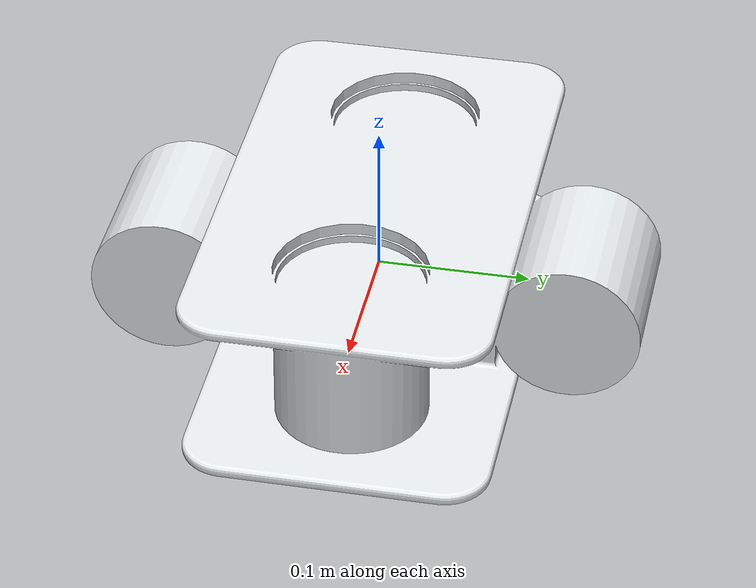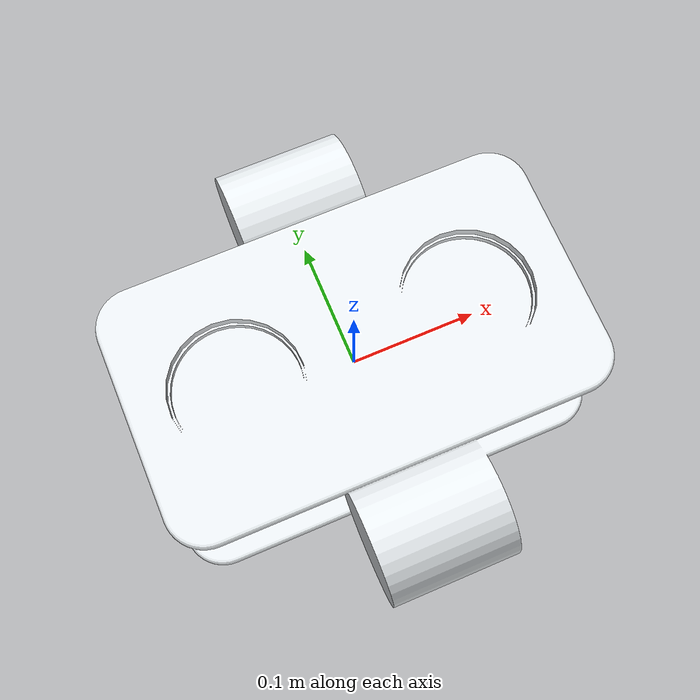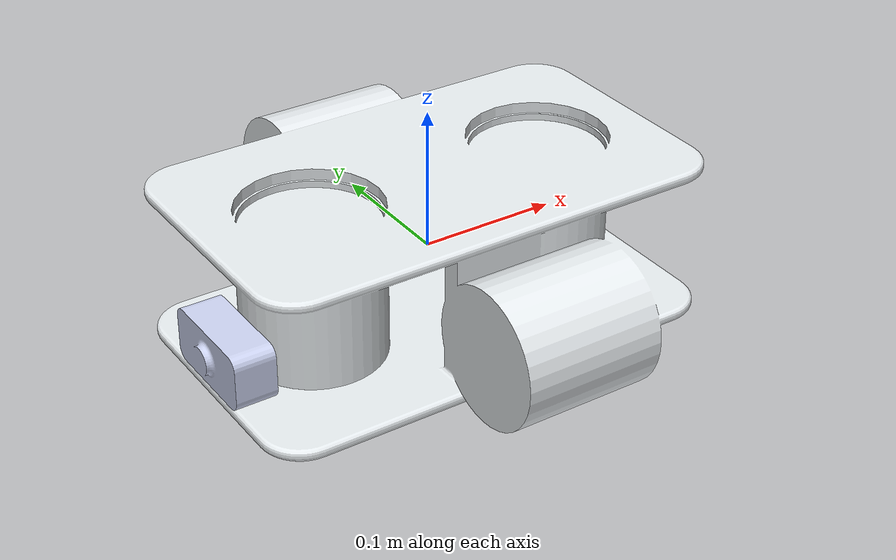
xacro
<?xml version="1.0" encoding="utf-8"?>

<robot name="rov_bus" xmlns:xacro="http://www.ros.org/wiki/xacro">

  <!-- Dummy thruster links to define position of the thrusters -->
  <!-- Input parameters: Thruster ID and pose of the joint -->
  <xacro:macro name="thruster_link" params="id xyz">

        <link name="thruster_${id}">
			<buoyancy>
				<compensation>1.0</compensation>
			</buoyancy>
        </link>

        <joint name="thruster_${id}_joint" type="fixed">
            <parent link="base_link"/>
            <child link="thruster_${id}"/>
            <origin rpy="0 0 0" xyz="${xyz}"/>
        </joint>

   </xacro:macro>

  <!-- Gazebo plugin for buoyancy -->
  <gazebo>
	<plugin name="freefloating_gazebo_control" filename="libfreefloating_gazebo_control.so">
		<switchService>switch</switchService>
		<updateRate>100</updateRate>
		<link>base_link</link>

		 <!-- for each thruster, give the map to XYZ+RPY and the maximum effort -->
        <thruster>
            <effort>40</effort>
            <name>thruster_1</name>
            <map>-1 0 0 0 0 1</map>
        </thruster>
		<thruster>
            <effort>40</effort>
            <name>thruster_2</name>
            <map>-1 0 0 0 0 -1</map>
        </thruster>
        <thruster>
            <effort>40</effort>
            <name>thruster_3</name>
            <map>0 0 -1 0 0 0</map>
        </thruster>
		<thruster>
            <effort>40</effort>
            <name>thruster_4</name>
            <map>>0 0 -1 0 0 0</map>
        </thruster>
	</plugin>
  </gazebo>

  <link name="base_link">
    <inertial>
      <origin
        xyz="0 0 0"
        rpy="0 0 0" />
      <mass
        value="6" />
      <inertia
        ixx="0.0136592345950678"
        ixy="-4.65512616595934E-07"
        ixz="-8.46843745917573E-14"
        iyy="0.0348658629476982"
        iyz="1.91528147483672E-07"
        izz="0.0229721582513523" />
    </inertial>
    <visual>
      <origin
        xyz="0 0 0"
        rpy="0 0 0" />
      <geometry>
        <mesh
          filename="package://rov_bus/meshes/base_link.STL" />
      </geometry>
      <material
        name="">
        <color
          rgba="0.898039215686275 0.917647058823529 0.929411764705882 1" />
      </material>
    </visual>
    <collision>
      <origin
        xyz="0 0 0"
        rpy="0 0 0" />
      <geometry>
        <mesh
          filename="package://rov_bus/meshes/base_link_collision.STL" />
      </geometry>
    </collision>
    <buoyancy>
      <compensation>1.01</compensation>
      <origin xyz="0 0 0"/>
      <limit radius="0.01"/>
      <damping xyz="20 20 20" rpy="10 10 10" type="linear"/>
	</buoyancy>
  </link>

  <gazebo reference="base_link">
	<material>Gazebo/Green</material>
  </gazebo>

  <link name="camera_hardware">
    <visual>
      <origin
        xyz="0 0 0"
        rpy="0 0 0" />
      <geometry>
        <mesh
          filename="package://rov_bus/meshes/camera_hardware.STL" />
      </geometry>
      <material
        name="">
        <color
          rgba="0.792156862745098 0.819607843137255 0.933333333333333 1" />
      </material>
    </visual>
    <collision>
      <origin
        xyz="0 0 0"
        rpy="0 0 0" />
      <geometry>
        <mesh
          filename="package://rov_bus/meshes/camera_hardware.STL" />
      </geometry>
    </collision>
    <buoyancy>
		<compensation>1.0</compensation>
	</buoyancy>
  </link>

  <joint
    name="camera_hardware_joint"
    type="fixed">
    <origin
      xyz="-0.155 0 -0.03"
      rpy="1.5708 0 0" />
    <parent
      link="base_link" />
    <child
      link="camera_hardware" />
  </joint>

  <gazebo reference="camera_hardware">
	<material>Gazebo/Red</material>
  </gazebo>

  <!-- ROV actuators -->
  <xacro:thruster_link id="1" xyz="0 -0.133 0"/> 						<!-- Left thruster -->
  <xacro:thruster_link id="2" xyz="0 0.133 0"/>  						<!-- Right thruster -->
  <xacro:thruster_link id="3" xyz="-0.09 0 0"/>  						<!-- Top front thruster -->
  <xacro:thruster_link id="4" xyz="0.09 0 0"/> 						    <!-- Top Back thruster -->

  <!-- ROV sensors -->
  <xacro:property name="camera_dimensions" value="0.001 0.001 0.001"/>

  <!-- Camera: gazebo sensor-->
  <link name="camera_head_link">
    <collision>
      <origin xyz="0 0 0" rpy="0 0 0"/>
      <geometry>
		<box size="${camera_dimensions}"/>
      </geometry>
    </collision>
    <visual>
      <origin xyz="0 0 0" rpy="0 0 0"/>
      <geometry>
    <box size="${camera_dimensions}"/>
      </geometry>
      <material name="black"/>
    </visual>
  </link>

  <joint name="camera_head_joint" type="fixed">
    <origin xyz="0 0 0" rpy="-1.5708 3.14 0"/>
    <parent link="camera_hardware"/>
    <child link="camera_head_link"/>
  </joint>

  <!-- Camera: Plugin -->
  <gazebo reference="camera_head_link">
	<material>Gazebo/Black</material>
    <sensor type="camera" name="camera_front">
      <update_rate>30.0</update_rate>
      <camera name="head">
        <horizontal_fov>1.3962634</horizontal_fov>
        <image>
          <width>800</width>
          <height>800</height>
          <format>R8G8B8</format>
        </image>
        <clip>
          <near>0.02</near>
          <far>300</far>
        </clip>
        <noise>
          <type>gaussian</type>
          <!-- Noise is sampled independently per pixel on each frame.
               That pixel's noise value is added to each of its color
               channels, which at that point lie in the range [0,1]. -->
          <mean>0.0</mean>
          <stddev>0.007</stddev>
        </noise>
      </camera>
      <plugin name="camera_controller" filename="libgazebo_ros_camera.so">
        <alwaysOn>true</alwaysOn>
        <updateRate>0.0</updateRate>
        <cameraName>camera_front</cameraName>
        <imageTopicName>image_raw</imageTopicName>
        <cameraInfoTopicName>camera_info</cameraInfoTopicName>
        <frameName>camera_link</frameName>
        <hackBaseline>0.07</hackBaseline>
        <distortionK1>0.0</distortionK1>
        <distortionK2>0.0</distortionK2>
        <distortionK3>0.0</distortionK3>
        <distortionT1>0.0</distortionT1>
        <distortionT2>0.0</distortionT2>
      </plugin>
    </sensor>
  </gazebo>

</robot>
